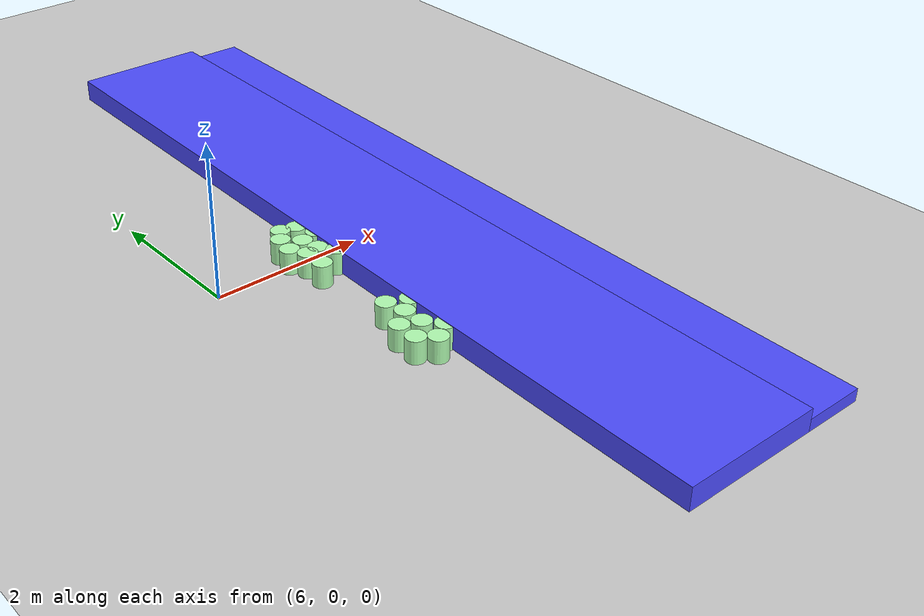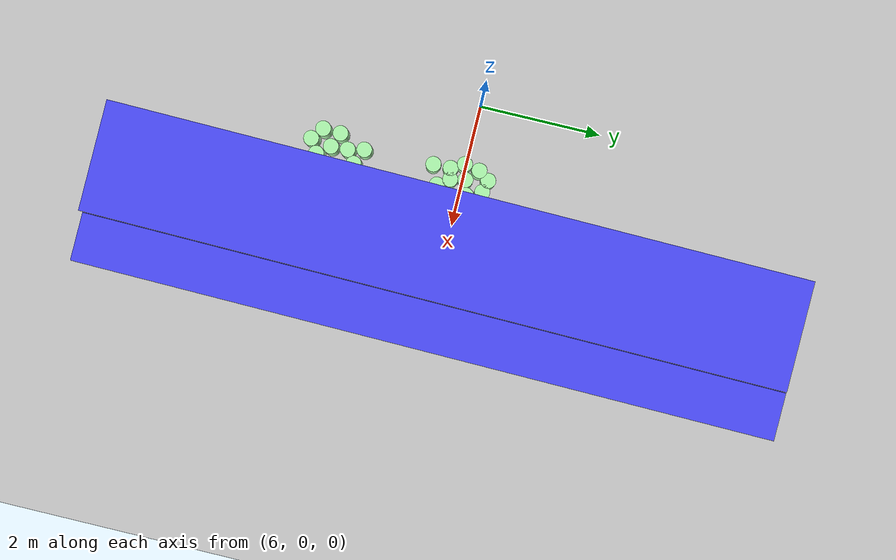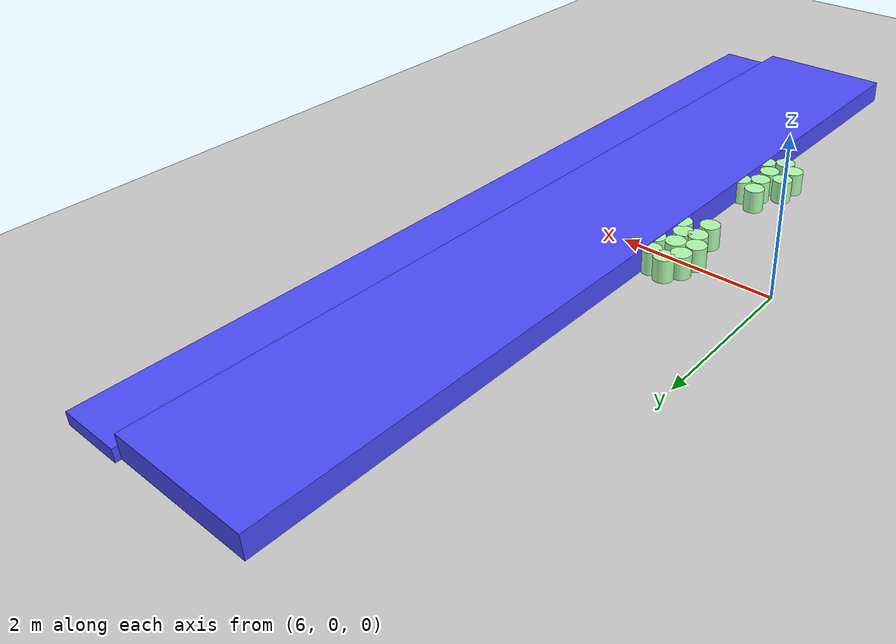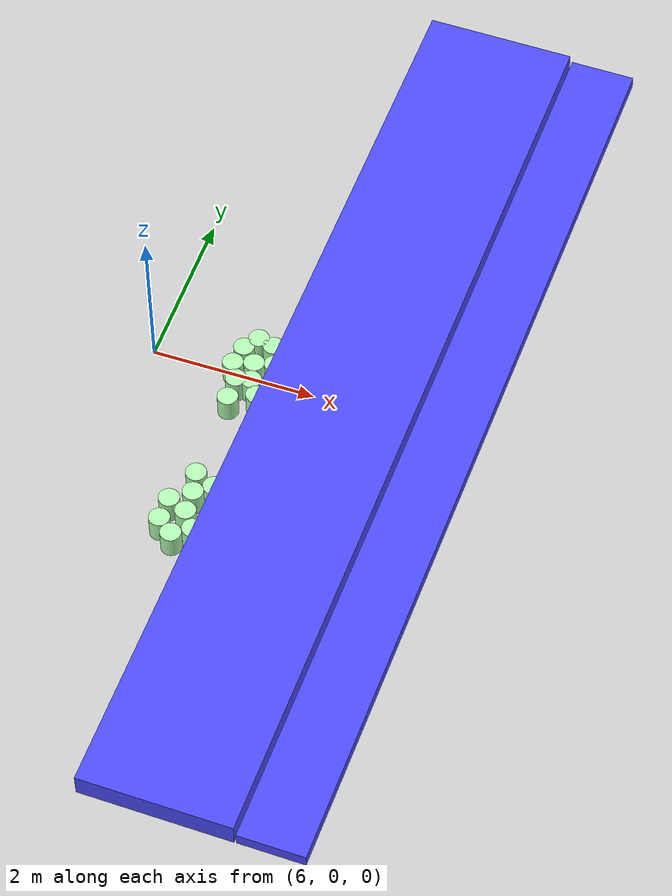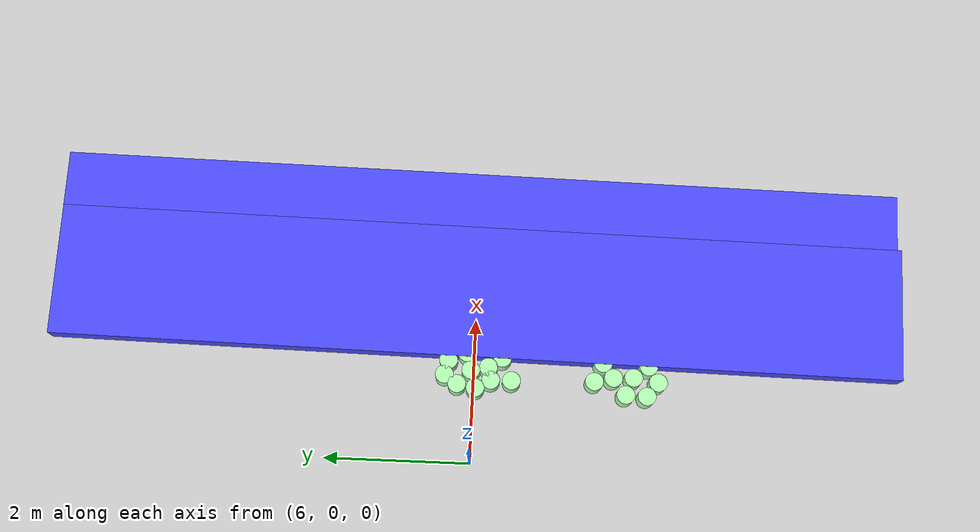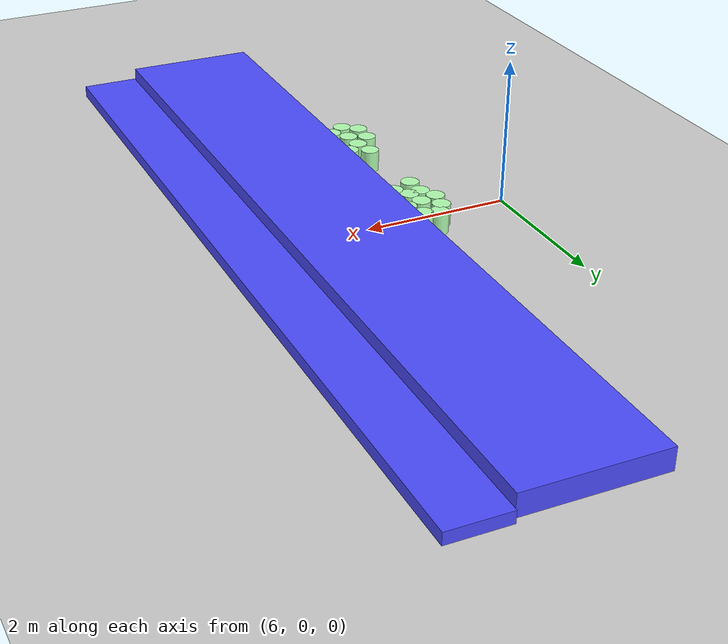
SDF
<sdf version="1.7">
 <world name="default">
  <model name="ground_plane">
   <static>1</static>
   <link name="link">
    <collision name="collision">
     <geometry><plane><normal>0 0 1</normal><size>100 100</size></plane></geometry>
     <surface><friction><ode><mu>100</mu><mu2>50</mu2></ode></friction></surface>
    </collision>
    <visual name="visual">
     <cast_shadows>0</cast_shadows>
     <geometry><plane><normal>0 0 1</normal><size>100 100</size></plane></geometry>
     <material>
      <script><uri>file://media/materials/scripts/gazebo.material</uri><name>Gazebo/Grey</name></script>
     </material>
    </visual>
   </link>
  </model>
  <model name="ban_400_80_30_clone_clone_clone">
   <link name="link">
    <inertial>
     <mass>1</mass>
     <inertia>
      <ixx>0.166667</ixx>
      <ixy>0</ixy>
      <ixz>0</ixz>
      <iyy>0.166667</iyy>
      <iyz>0</iyz>
      <izz>0.166667</izz>
     </inertia>
    </inertial>
    <visual name="visual">
     <geometry><box><size>11.703 1.83242 0.3</size></box></geometry>
     <material>
      <script><name>Gazebo/Grey</name><uri>file://media/materials/scripts/gazebo.material</uri></script>
      <shader type="pixel"><normal_map>__default__</normal_map></shader>
      <ambient>0.3 0.3 1 1</ambient>
      <diffuse>0.7 0.7 0.7 1</diffuse>
      <specular>0.01 0.01 0.01 1</specular>
      <emissive>0 0 0 1</emissive>
     </material>
    </visual>
    <collision name="collision">
     <geometry><box><size>11.703 1.83242 0.3</size></box></geometry>
     <surface>
      <friction>
       <ode><mu>1</mu><mu2>1</mu2><fdir1>0 0 0</fdir1><slip1>0</slip1><slip2>0</slip2></ode>
       <torsional>
        <coefficient>1</coefficient>
        <patch_radius>0</patch_radius>
        <surface_radius>0</surface_radius>
        <use_patch_radius>1</use_patch_radius>
        <ode><slip>0</slip></ode>
       </torsional>
      </friction>
      <bounce><restitution_coefficient>0</restitution_coefficient><threshold>1e+06</threshold></bounce>
      <contact>
       <collide_without_contact>0</collide_without_contact>
       <collide_without_contact_bitmask>1</collide_without_contact_bitmask>
       <collide_bitmask>1</collide_bitmask>
       <ode>
        <soft_cfm>0</soft_cfm>
        <soft_erp>0.2</soft_erp>
        <kp>1e+13</kp>
        <kd>1</kd>
        <max_vel>0.01</max_vel>
        <min_depth>0</min_depth>
       </ode>
       <bullet>
        <split_impulse>1</split_impulse>
        <split_impulse_penetration_threshold>-0.01</split_impulse_penetration_threshold>
        <soft_cfm>0</soft_cfm>
        <soft_erp>0.2</soft_erp>
        <kp>1e+13</kp>
        <kd>1</kd>
       </bullet>
      </contact>
     </surface>
    </collision>
   </link>
   <static>1</static>
   <pose>8.35251 0.000658 0.15556 0 -0 1.55763</pose>
  </model>
  <model name="ban_400_80_30_clone">
   <link name="link">
    <inertial>
     <mass>1</mass>
     <inertia>
      <ixx>0.166667</ixx>
      <ixy>0</ixy>
      <ixz>0</ixz>
      <iyy>0.166667</iyy>
      <iyz>0</iyz>
      <izz>0.166667</izz>
     </inertia>
    </inertial>
    <visual name="visual">
     <geometry><box><size>11.7457 0.8 0.3</size></box></geometry>
     <material>
      <script><name>Gazebo/Grey</name><uri>file://media/materials/scripts/gazebo.material</uri></script>
      <shader type="pixel"><normal_map>__default__</normal_map></shader>
      <ambient>0.3 0.3 1 1</ambient>
      <diffuse>0.7 0.7 0.7 1</diffuse>
      <specular>0.01 0.01 0.01 1</specular>
      <emissive>0 0 0 1</emissive>
     </material>
    </visual>
    <collision name="collision">
     <geometry><box><size>11.7457 0.8 0.3</size></box></geometry>
     <surface>
      <friction>
       <ode><mu>1</mu><mu2>1</mu2><fdir1>0 0 0</fdir1><slip1>0</slip1><slip2>0</slip2></ode>
       <torsional>
        <coefficient>1</coefficient>
        <patch_radius>0</patch_radius>
        <surface_radius>0</surface_radius>
        <use_patch_radius>1</use_patch_radius>
        <ode><slip>0</slip></ode>
       </torsional>
      </friction>
      <bounce><restitution_coefficient>0</restitution_coefficient><threshold>1e+06</threshold></bounce>
      <contact>
       <collide_without_contact>0</collide_without_contact>
       <collide_without_contact_bitmask>1</collide_without_contact_bitmask>
       <collide_bitmask>1</collide_bitmask>
       <ode>
        <soft_cfm>0</soft_cfm>
        <soft_erp>0.2</soft_erp>
        <kp>1e+13</kp>
        <kd>1</kd>
        <max_vel>0.01</max_vel>
        <min_depth>0</min_depth>
       </ode>
       <bullet>
        <split_impulse>1</split_impulse>
        <split_impulse_penetration_threshold>-0.01</split_impulse_penetration_threshold>
        <soft_cfm>0</soft_cfm>
        <soft_erp>0.2</soft_erp>
        <kp>1e+13</kp>
        <kd>1</kd>
       </bullet>
      </contact>
     </surface>
    </collision>
   </link>
   <static>1</static>
   <pose>9.68721 0.016567 0 0 -0 1.55763</pose>
  </model>
  <model name="mhz_y_25_30_clone_29_clone_clone_clone_1_clone_2_clone_0">
   <link name="link">
    <inertial>
     <mass>1</mass>
     <inertia><ixx>0.145833</ixx><ixy>0</ixy><ixz>0</ixz><iyy>0.145833</iyy><iyz>0</iyz><izz>0.125</izz></inertia>
    </inertial>
    <visual name="visual">
     <geometry><cylinder><radius>0.125</radius><length>0.3</length></cylinder></geometry>
     <material>
      <script><name>Gazebo/Grey</name><uri>file://media/materials/scripts/gazebo.material</uri></script>
      <shader type="pixel"><normal_map>__default__</normal_map></shader>
      <ambient>0 1 0 0</ambient>
      <diffuse>0.7 1 0.7 1</diffuse>
      <specular>0.01 0.01 0.01 1</specular>
      <emissive>0 0 0 1</emissive>
     </material>
    </visual>
    <collision name="collision">
     <geometry><cylinder><radius>0.125</radius><length>0.3</length></cylinder></geometry>
     <surface>
      <friction>
       <ode><mu>1</mu><mu2>1</mu2><fdir1>0 0 0</fdir1><slip1>0</slip1><slip2>0</slip2></ode>
       <torsional>
        <coefficient>1</coefficient>
        <patch_radius>0</patch_radius>
        <surface_radius>0</surface_radius>
        <use_patch_radius>1</use_patch_radius>
        <ode><slip>0</slip></ode>
       </torsional>
      </friction>
      <bounce><restitution_coefficient>0</restitution_coefficient><threshold>1e+06</threshold></bounce>
      <contact>
       <collide_without_contact>0</collide_without_contact>
       <collide_without_contact_bitmask>1</collide_without_contact_bitmask>
       <collide_bitmask>1</collide_bitmask>
       <ode>
        <soft_cfm>0</soft_cfm>
        <soft_erp>0.2</soft_erp>
        <kp>1e+13</kp>
        <kd>1</kd>
        <max_vel>0.01</max_vel>
        <min_depth>0</min_depth>
       </ode>
       <bullet>
        <split_impulse>1</split_impulse>
        <split_impulse_penetration_threshold>-0.01</split_impulse_penetration_threshold>
        <soft_cfm>0</soft_cfm>
        <soft_erp>0.2</soft_erp>
        <kp>1e+13</kp>
        <kd>1</kd>
       </bullet>
      </contact>
     </surface>
    </collision>
   </link>
   <static>1</static>
   <pose>7.01026 -0.026172 0.14679 0 -0 0</pose>
  </model>
  <model name="mhz_y_25_30_clone_29_clone_clone_clone_1_clone_2_clone_1">
   <link name="link">
    <inertial>
     <mass>1</mass>
     <inertia><ixx>0.145833</ixx><ixy>0</ixy><ixz>0</ixz><iyy>0.145833</iyy><iyz>0</iyz><izz>0.125</izz></inertia>
    </inertial>
    <visual name="visual">
     <geometry><cylinder><radius>0.125</radius><length>0.3</length></cylinder></geometry>
     <material>
      <script><name>Gazebo/Grey</name><uri>file://media/materials/scripts/gazebo.material</uri></script>
      <shader type="pixel"><normal_map>__default__</normal_map></shader>
      <ambient>0 1 0 0</ambient>
      <diffuse>0.7 1 0.7 1</diffuse>
      <specular>0.01 0.01 0.01 1</specular>
      <emissive>0 0 0 1</emissive>
     </material>
    </visual>
    <collision name="collision">
     <geometry><cylinder><radius>0.125</radius><length>0.3</length></cylinder></geometry>
     <surface>
      <friction>
       <ode><mu>1</mu><mu2>1</mu2><fdir1>0 0 0</fdir1><slip1>0</slip1><slip2>0</slip2></ode>
       <torsional>
        <coefficient>1</coefficient>
        <patch_radius>0</patch_radius>
        <surface_radius>0</surface_radius>
        <use_patch_radius>1</use_patch_radius>
        <ode><slip>0</slip></ode>
       </torsional>
      </friction>
      <bounce><restitution_coefficient>0</restitution_coefficient><threshold>1e+06</threshold></bounce>
      <contact>
       <collide_without_contact>0</collide_without_contact>
       <collide_without_contact_bitmask>1</collide_without_contact_bitmask>
       <collide_bitmask>1</collide_bitmask>
       <ode>
        <soft_cfm>0</soft_cfm>
        <soft_erp>0.2</soft_erp>
        <kp>1e+13</kp>
        <kd>1</kd>
        <max_vel>0.01</max_vel>
        <min_depth>0</min_depth>
       </ode>
       <bullet>
        <split_impulse>1</split_impulse>
        <split_impulse_penetration_threshold>-0.01</split_impulse_penetration_threshold>
        <soft_cfm>0</soft_cfm>
        <soft_erp>0.2</soft_erp>
        <kp>1e+13</kp>
        <kd>1</kd>
       </bullet>
      </contact>
     </surface>
    </collision>
   </link>
   <static>1</static>
   <pose>7.05705 0.224099 0.14679 0 -0 0</pose>
  </model>
  <model name="mhz_y_25_30_clone_29_clone_clone_clone_1_clone_2_clone_2">
   <link name="link">
    <inertial>
     <mass>1</mass>
     <inertia><ixx>0.145833</ixx><ixy>0</ixy><ixz>0</ixz><iyy>0.145833</iyy><iyz>0</iyz><izz>0.125</izz></inertia>
    </inertial>
    <visual name="visual">
     <geometry><cylinder><radius>0.125</radius><length>0.3</length></cylinder></geometry>
     <material>
      <script><name>Gazebo/Grey</name><uri>file://media/materials/scripts/gazebo.material</uri></script>
      <shader type="pixel"><normal_map>__default__</normal_map></shader>
      <ambient>0 1 0 0</ambient>
      <diffuse>0.7 1 0.7 1</diffuse>
      <specular>0.01 0.01 0.01 1</specular>
      <emissive>0 0 0 1</emissive>
     </material>
    </visual>
    <collision name="collision">
     <geometry><cylinder><radius>0.125</radius><length>0.3</length></cylinder></geometry>
     <surface>
      <friction>
       <ode><mu>1</mu><mu2>1</mu2><fdir1>0 0 0</fdir1><slip1>0</slip1><slip2>0</slip2></ode>
       <torsional>
        <coefficient>1</coefficient>
        <patch_radius>0</patch_radius>
        <surface_radius>0</surface_radius>
        <use_patch_radius>1</use_patch_radius>
        <ode><slip>0</slip></ode>
       </torsional>
      </friction>
      <bounce><restitution_coefficient>0</restitution_coefficient><threshold>1e+06</threshold></bounce>
      <contact>
       <collide_without_contact>0</collide_without_contact>
       <collide_without_contact_bitmask>1</collide_without_contact_bitmask>
       <collide_bitmask>1</collide_bitmask>
       <ode>
        <soft_cfm>0</soft_cfm>
        <soft_erp>0.2</soft_erp>
        <kp>1e+13</kp>
        <kd>1</kd>
        <max_vel>0.01</max_vel>
        <min_depth>0</min_depth>
       </ode>
       <bullet>
        <split_impulse>1</split_impulse>
        <split_impulse_penetration_threshold>-0.01</split_impulse_penetration_threshold>
        <soft_cfm>0</soft_cfm>
        <soft_erp>0.2</soft_erp>
        <kp>1e+13</kp>
        <kd>1</kd>
       </bullet>
      </contact>
     </surface>
    </collision>
   </link>
   <static>1</static>
   <pose>7.18017 0.399555 0.14679 0 -0 0</pose>
  </model>
  <model name="mhz_y_25_30_clone_29_clone_clone_clone_1_clone_2_clone_3">
   <link name="link">
    <inertial>
     <mass>1</mass>
     <inertia><ixx>0.145833</ixx><ixy>0</ixy><ixz>0</ixz><iyy>0.145833</iyy><iyz>0</iyz><izz>0.125</izz></inertia>
    </inertial>
    <visual name="visual">
     <geometry><cylinder><radius>0.125</radius><length>0.3</length></cylinder></geometry>
     <material>
      <script><name>Gazebo/Grey</name><uri>file://media/materials/scripts/gazebo.material</uri></script>
      <shader type="pixel"><normal_map>__default__</normal_map></shader>
      <ambient>0 1 0 0</ambient>
      <diffuse>0.7 1 0.7 1</diffuse>
      <specular>0.01 0.01 0.01 1</specular>
      <emissive>0 0 0 1</emissive>
     </material>
    </visual>
    <collision name="collision">
     <geometry><cylinder><radius>0.125</radius><length>0.3</length></cylinder></geometry>
     <surface>
      <friction>
       <ode><mu>1</mu><mu2>1</mu2><fdir1>0 0 0</fdir1><slip1>0</slip1><slip2>0</slip2></ode>
       <torsional>
        <coefficient>1</coefficient>
        <patch_radius>0</patch_radius>
        <surface_radius>0</surface_radius>
        <use_patch_radius>1</use_patch_radius>
        <ode><slip>0</slip></ode>
       </torsional>
      </friction>
      <bounce><restitution_coefficient>0</restitution_coefficient><threshold>1e+06</threshold></bounce>
      <contact>
       <collide_without_contact>0</collide_without_contact>
       <collide_without_contact_bitmask>1</collide_without_contact_bitmask>
       <collide_bitmask>1</collide_bitmask>
       <ode>
        <soft_cfm>0</soft_cfm>
        <soft_erp>0.2</soft_erp>
        <kp>1e+13</kp>
        <kd>1</kd>
        <max_vel>0.01</max_vel>
        <min_depth>0</min_depth>
       </ode>
       <bullet>
        <split_impulse>1</split_impulse>
        <split_impulse_penetration_threshold>-0.01</split_impulse_penetration_threshold>
        <soft_cfm>0</soft_cfm>
        <soft_erp>0.2</soft_erp>
        <kp>1e+13</kp>
        <kd>1</kd>
       </bullet>
      </contact>
     </surface>
    </collision>
   </link>
   <static>1</static>
   <pose>7.25199 0.040203 0.14679 0 -0 0</pose>
  </model>
  <model name="mhz_y_25_30_clone_29_clone_clone_clone_1_clone_2_clone_4">
   <link name="link">
    <inertial>
     <mass>1</mass>
     <inertia><ixx>0.145833</ixx><ixy>0</ixy><ixz>0</ixz><iyy>0.145833</iyy><iyz>0</iyz><izz>0.125</izz></inertia>
    </inertial>
    <visual name="visual">
     <geometry><cylinder><radius>0.125</radius><length>0.3</length></cylinder></geometry>
     <material>
      <script><name>Gazebo/Grey</name><uri>file://media/materials/scripts/gazebo.material</uri></script>
      <shader type="pixel"><normal_map>__default__</normal_map></shader>
      <ambient>0 1 0 0</ambient>
      <diffuse>0.7 1 0.7 1</diffuse>
      <specular>0.01 0.01 0.01 1</specular>
      <emissive>0 0 0 1</emissive>
     </material>
    </visual>
    <collision name="collision">
     <geometry><cylinder><radius>0.125</radius><length>0.3</length></cylinder></geometry>
     <surface>
      <friction>
       <ode><mu>1</mu><mu2>1</mu2><fdir1>0 0 0</fdir1><slip1>0</slip1><slip2>0</slip2></ode>
       <torsional>
        <coefficient>1</coefficient>
        <patch_radius>0</patch_radius>
        <surface_radius>0</surface_radius>
        <use_patch_radius>1</use_patch_radius>
        <ode><slip>0</slip></ode>
       </torsional>
      </friction>
      <bounce><restitution_coefficient>0</restitution_coefficient><threshold>1e+06</threshold></bounce>
      <contact>
       <collide_without_contact>0</collide_without_contact>
       <collide_without_contact_bitmask>1</collide_without_contact_bitmask>
       <collide_bitmask>1</collide_bitmask>
       <ode>
        <soft_cfm>0</soft_cfm>
        <soft_erp>0.2</soft_erp>
        <kp>1e+13</kp>
        <kd>1</kd>
        <max_vel>0.01</max_vel>
        <min_depth>0</min_depth>
       </ode>
       <bullet>
        <split_impulse>1</split_impulse>
        <split_impulse_penetration_threshold>-0.01</split_impulse_penetration_threshold>
        <soft_cfm>0</soft_cfm>
        <soft_erp>0.2</soft_erp>
        <kp>1e+13</kp>
        <kd>1</kd>
       </bullet>
      </contact>
     </surface>
    </collision>
   </link>
   <static>1</static>
   <pose>7.12435 -0.234569 0.14679 0 -0 0</pose>
  </model>
  <model name="mhz_y_25_30_clone_29_clone_clone_clone_1_clone_2_clone_5">
   <link name="link">
    <inertial>
     <mass>1</mass>
     <inertia><ixx>0.145833</ixx><ixy>0</ixy><ixz>0</ixz><iyy>0.145833</iyy><iyz>0</iyz><izz>0.125</izz></inertia>
    </inertial>
    <visual name="visual">
     <geometry><cylinder><radius>0.125</radius><length>0.3</length></cylinder></geometry>
     <material>
      <script><name>Gazebo/Grey</name><uri>file://media/materials/scripts/gazebo.material</uri></script>
      <shader type="pixel"><normal_map>__default__</normal_map></shader>
      <ambient>0 1 0 0</ambient>
      <diffuse>0.7 1 0.7 1</diffuse>
      <specular>0.01 0.01 0.01 1</specular>
      <emissive>0 0 0 1</emissive>
     </material>
    </visual>
    <collision name="collision">
     <geometry><cylinder><radius>0.125</radius><length>0.3</length></cylinder></geometry>
     <surface>
      <friction>
       <ode><mu>1</mu><mu2>1</mu2><fdir1>0 0 0</fdir1><slip1>0</slip1><slip2>0</slip2></ode>
       <torsional>
        <coefficient>1</coefficient>
        <patch_radius>0</patch_radius>
        <surface_radius>0</surface_radius>
        <use_patch_radius>1</use_patch_radius>
        <ode><slip>0</slip></ode>
       </torsional>
      </friction>
      <bounce><restitution_coefficient>0</restitution_coefficient><threshold>1e+06</threshold></bounce>
      <contact>
       <collide_without_contact>0</collide_without_contact>
       <collide_without_contact_bitmask>1</collide_without_contact_bitmask>
       <collide_bitmask>1</collide_bitmask>
       <ode>
        <soft_cfm>0</soft_cfm>
        <soft_erp>0.2</soft_erp>
        <kp>1e+13</kp>
        <kd>1</kd>
        <max_vel>0.01</max_vel>
        <min_depth>0</min_depth>
       </ode>
       <bullet>
        <split_impulse>1</split_impulse>
        <split_impulse_penetration_threshold>-0.01</split_impulse_penetration_threshold>
        <soft_cfm>0</soft_cfm>
        <soft_erp>0.2</soft_erp>
        <kp>1e+13</kp>
        <kd>1</kd>
       </bullet>
      </contact>
     </surface>
    </collision>
   </link>
   <static>1</static>
   <pose>7.3015 -0.199523 0.14679 0 -0 0</pose>
  </model>
  <model name="mhz_y_25_30_clone_29_clone_clone_clone_1_clone_2_clone_6">
   <link name="link">
    <inertial>
     <mass>1</mass>
     <inertia><ixx>0.145833</ixx><ixy>0</ixy><ixz>0</ixz><iyy>0.145833</iyy><iyz>0</iyz><izz>0.125</izz></inertia>
    </inertial>
    <visual name="visual">
     <geometry><cylinder><radius>0.125</radius><length>0.3</length></cylinder></geometry>
     <material>
      <script><name>Gazebo/Grey</name><uri>file://media/materials/scripts/gazebo.material</uri></script>
      <shader type="pixel"><normal_map>__default__</normal_map></shader>
      <ambient>0 1 0 0</ambient>
      <diffuse>0.7 1 0.7 1</diffuse>
      <specular>0.01 0.01 0.01 1</specular>
      <emissive>0 0 0 1</emissive>
     </material>
    </visual>
    <collision name="collision">
     <geometry><cylinder><radius>0.125</radius><length>0.3</length></cylinder></geometry>
     <surface>
      <friction>
       <ode><mu>1</mu><mu2>1</mu2><fdir1>0 0 0</fdir1><slip1>0</slip1><slip2>0</slip2></ode>
       <torsional>
        <coefficient>1</coefficient>
        <patch_radius>0</patch_radius>
        <surface_radius>0</surface_radius>
        <use_patch_radius>1</use_patch_radius>
        <ode><slip>0</slip></ode>
       </torsional>
      </friction>
      <bounce><restitution_coefficient>0</restitution_coefficient><threshold>1e+06</threshold></bounce>
      <contact>
       <collide_without_contact>0</collide_without_contact>
       <collide_without_contact_bitmask>1</collide_without_contact_bitmask>
       <collide_bitmask>1</collide_bitmask>
       <ode>
        <soft_cfm>0</soft_cfm>
        <soft_erp>0.2</soft_erp>
        <kp>1e+13</kp>
        <kd>1</kd>
        <max_vel>0.01</max_vel>
        <min_depth>0</min_depth>
       </ode>
       <bullet>
        <split_impulse>1</split_impulse>
        <split_impulse_penetration_threshold>-0.01</split_impulse_penetration_threshold>
        <soft_cfm>0</soft_cfm>
        <soft_erp>0.2</soft_erp>
        <kp>1e+13</kp>
        <kd>1</kd>
       </bullet>
      </contact>
     </surface>
    </collision>
   </link>
   <static>1</static>
   <pose>7.37887 0.349223 0.14679 0 -0 0</pose>
  </model>
  <model name="mhz_y_25_30_clone_29_clone_clone_clone_1_clone_2_clone_7">
   <link name="link">
    <inertial>
     <mass>1</mass>
     <inertia><ixx>0.145833</ixx><ixy>0</ixy><ixz>0</ixz><iyy>0.145833</iyy><iyz>0</iyz><izz>0.125</izz></inertia>
    </inertial>
    <visual name="visual">
     <geometry><cylinder><radius>0.125</radius><length>0.3</length></cylinder></geometry>
     <material>
      <script><name>Gazebo/Grey</name><uri>file://media/materials/scripts/gazebo.material</uri></script>
      <shader type="pixel"><normal_map>__default__</normal_map></shader>
      <ambient>0 1 0 0</ambient>
      <diffuse>0.7 1 0.7 1</diffuse>
      <specular>0.01 0.01 0.01 1</specular>
      <emissive>0 0 0 1</emissive>
     </material>
    </visual>
    <collision name="collision">
     <geometry><cylinder><radius>0.125</radius><length>0.3</length></cylinder></geometry>
     <surface>
      <friction>
       <ode><mu>1</mu><mu2>1</mu2><fdir1>0 0 0</fdir1><slip1>0</slip1><slip2>0</slip2></ode>
       <torsional>
        <coefficient>1</coefficient>
        <patch_radius>0</patch_radius>
        <surface_radius>0</surface_radius>
        <use_patch_radius>1</use_patch_radius>
        <ode><slip>0</slip></ode>
       </torsional>
      </friction>
      <bounce><restitution_coefficient>0</restitution_coefficient><threshold>1e+06</threshold></bounce>
      <contact>
       <collide_without_contact>0</collide_without_contact>
       <collide_without_contact_bitmask>1</collide_without_contact_bitmask>
       <collide_bitmask>1</collide_bitmask>
       <ode>
        <soft_cfm>0</soft_cfm>
        <soft_erp>0.2</soft_erp>
        <kp>1e+13</kp>
        <kd>1</kd>
        <max_vel>0.01</max_vel>
        <min_depth>0</min_depth>
       </ode>
       <bullet>
        <split_impulse>1</split_impulse>
        <split_impulse_penetration_threshold>-0.01</split_impulse_penetration_threshold>
        <soft_cfm>0</soft_cfm>
        <soft_erp>0.2</soft_erp>
        <kp>1e+13</kp>
        <kd>1</kd>
       </bullet>
      </contact>
     </surface>
    </collision>
   </link>
   <static>1</static>
   <pose>7.48841 0.102347 0.14679 0 -0 0</pose>
  </model>
  <model name="mhz_y_25_30_clone_29_clone_clone_clone_1_clone_2_clone_9">
   <link name="link">
    <inertial>
     <mass>1</mass>
     <inertia><ixx>0.145833</ixx><ixy>0</ixy><ixz>0</ixz><iyy>0.145833</iyy><iyz>0</iyz><izz>0.125</izz></inertia>
    </inertial>
    <visual name="visual">
     <geometry><cylinder><radius>0.125</radius><length>0.3</length></cylinder></geometry>
     <material>
      <script><name>Gazebo/Grey</name><uri>file://media/materials/scripts/gazebo.material</uri></script>
      <shader type="pixel"><normal_map>__default__</normal_map></shader>
      <ambient>0 1 0 0</ambient>
      <diffuse>0.7 1 0.7 1</diffuse>
      <specular>0.01 0.01 0.01 1</specular>
      <emissive>0 0 0 1</emissive>
     </material>
    </visual>
    <collision name="collision">
     <geometry><cylinder><radius>0.125</radius><length>0.3</length></cylinder></geometry>
     <surface>
      <friction>
       <ode><mu>1</mu><mu2>1</mu2><fdir1>0 0 0</fdir1><slip1>0</slip1><slip2>0</slip2></ode>
       <torsional>
        <coefficient>1</coefficient>
        <patch_radius>0</patch_radius>
        <surface_radius>0</surface_radius>
        <use_patch_radius>1</use_patch_radius>
        <ode><slip>0</slip></ode>
       </torsional>
      </friction>
      <bounce><restitution_coefficient>0</restitution_coefficient><threshold>1e+06</threshold></bounce>
      <contact>
       <collide_without_contact>0</collide_without_contact>
       <collide_without_contact_bitmask>1</collide_without_contact_bitmask>
       <collide_bitmask>1</collide_bitmask>
       <ode>
        <soft_cfm>0</soft_cfm>
        <soft_erp>0.2</soft_erp>
        <kp>1e+13</kp>
        <kd>1</kd>
        <max_vel>0.01</max_vel>
        <min_depth>0</min_depth>
       </ode>
       <bullet>
        <split_impulse>1</split_impulse>
        <split_impulse_penetration_threshold>-0.01</split_impulse_penetration_threshold>
        <soft_cfm>0</soft_cfm>
        <soft_erp>0.2</soft_erp>
        <kp>1e+13</kp>
        <kd>1</kd>
       </bullet>
      </contact>
     </surface>
    </collision>
   </link>
   <static>1</static>
   <pose>7.12873 -0.517321 0.14679 0 -0 0</pose>
  </model>
  <model name="mhz_y_25_30_clone_29_clone_clone_clone_1_clone_2_clone_10">
   <link name="link">
    <inertial>
     <mass>1</mass>
     <inertia><ixx>0.145833</ixx><ixy>0</ixy><ixz>0</ixz><iyy>0.145833</iyy><iyz>0</iyz><izz>0.125</izz></inertia>
    </inertial>
    <visual name="visual">
     <geometry><cylinder><radius>0.125</radius><length>0.3</length></cylinder></geometry>
     <material>
      <script><name>Gazebo/Grey</name><uri>file://media/materials/scripts/gazebo.material</uri></script>
      <shader type="pixel"><normal_map>__default__</normal_map></shader>
      <ambient>0 1 0 0</ambient>
      <diffuse>0.7 1 0.7 1</diffuse>
      <specular>0.01 0.01 0.01 1</specular>
      <emissive>0 0 0 1</emissive>
     </material>
    </visual>
    <collision name="collision">
     <geometry><cylinder><radius>0.125</radius><length>0.3</length></cylinder></geometry>
     <surface>
      <friction>
       <ode><mu>1</mu><mu2>1</mu2><fdir1>0 0 0</fdir1><slip1>0</slip1><slip2>0</slip2></ode>
       <torsional>
        <coefficient>1</coefficient>
        <patch_radius>0</patch_radius>
        <surface_radius>0</surface_radius>
        <use_patch_radius>1</use_patch_radius>
        <ode><slip>0</slip></ode>
       </torsional>
      </friction>
      <bounce><restitution_coefficient>0</restitution_coefficient><threshold>1e+06</threshold></bounce>
      <contact>
       <collide_without_contact>0</collide_without_contact>
       <collide_without_contact_bitmask>1</collide_without_contact_bitmask>
       <collide_bitmask>1</collide_bitmask>
       <ode>
        <soft_cfm>0</soft_cfm>
        <soft_erp>0.2</soft_erp>
        <kp>1e+13</kp>
        <kd>1</kd>
        <max_vel>0.01</max_vel>
        <min_depth>0</min_depth>
       </ode>
       <bullet>
        <split_impulse>1</split_impulse>
        <split_impulse_penetration_threshold>-0.01</split_impulse_penetration_threshold>
        <soft_cfm>0</soft_cfm>
        <soft_erp>0.2</soft_erp>
        <kp>1e+13</kp>
        <kd>1</kd>
       </bullet>
      </contact>
     </surface>
    </collision>
   </link>
   <static>1</static>
   <pose>7.4341 -0.38565 0.14679 0 -0 0</pose>
  </model>
  <model name="mhz_y_25_30_clone_29_clone_clone_clone_1_clone_2_clone_8_clone_clone_clone_0_clone_1_clone_clone_0_clone_0_clone_clone_1_clone_clone_clone_clone_clone">
   <link name="link">
    <inertial>
     <mass>1</mass>
     <inertia><ixx>0.145833</ixx><ixy>0</ixy><ixz>0</ixz><iyy>0.145833</iyy><iyz>0</iyz><izz>0.125</izz></inertia>
    </inertial>
    <visual name="visual">
     <geometry><cylinder><radius>0.125</radius><length>0.3</length></cylinder></geometry>
     <material>
      <script><name>Gazebo/Grey</name><uri>file://media/materials/scripts/gazebo.material</uri></script>
      <shader type="pixel"><normal_map>__default__</normal_map></shader>
      <ambient>0 1 0 0</ambient>
      <diffuse>0.7 1 0.7 1</diffuse>
      <specular>0.01 0.01 0.01 1</specular>
      <emissive>0 0 0 1</emissive>
     </material>
    </visual>
    <collision name="collision">
     <geometry><cylinder><radius>0.125</radius><length>0.3</length></cylinder></geometry>
     <surface>
      <friction>
       <ode><mu>1</mu><mu2>1</mu2><fdir1>0 0 0</fdir1><slip1>0</slip1><slip2>0</slip2></ode>
       <torsional>
        <coefficient>1</coefficient>
        <patch_radius>0</patch_radius>
        <surface_radius>0</surface_radius>
        <use_patch_radius>1</use_patch_radius>
        <ode><slip>0</slip></ode>
       </torsional>
      </friction>
      <bounce><restitution_coefficient>0</restitution_coefficient><threshold>1e+06</threshold></bounce>
      <contact>
       <collide_without_contact>0</collide_without_contact>
       <collide_without_contact_bitmask>1</collide_without_contact_bitmask>
       <collide_bitmask>1</collide_bitmask>
       <ode>
        <soft_cfm>0</soft_cfm>
        <soft_erp>0.2</soft_erp>
        <kp>1e+13</kp>
        <kd>1</kd>
        <max_vel>0.01</max_vel>
        <min_depth>0</min_depth>
       </ode>
       <bullet>
        <split_impulse>1</split_impulse>
        <split_impulse_penetration_threshold>-0.01</split_impulse_penetration_threshold>
        <soft_cfm>0</soft_cfm>
        <soft_erp>0.2</soft_erp>
        <kp>1e+13</kp>
        <kd>1</kd>
       </bullet>
      </contact>
     </surface>
    </collision>
   </link>
   <static>1</static>
   <pose>7.00052 -2.0781 0.14679 0 -0 0</pose>
  </model>
  <model name="mhz_y_25_30_clone_29_clone_clone_clone_1_clone_2_clone_8_clone_clone_clone_0_clone_1_clone_clone_0_clone_0_clone_clone_1_clone_clone_clone_clone_clone_clone">
   <link name="link">
    <inertial>
     <mass>1</mass>
     <inertia><ixx>0.145833</ixx><ixy>0</ixy><ixz>0</ixz><iyy>0.145833</iyy><iyz>0</iyz><izz>0.125</izz></inertia>
    </inertial>
    <visual name="visual">
     <geometry><cylinder><radius>0.125</radius><length>0.3</length></cylinder></geometry>
     <material>
      <script><name>Gazebo/Grey</name><uri>file://media/materials/scripts/gazebo.material</uri></script>
      <shader type="pixel"><normal_map>__default__</normal_map></shader>
      <ambient>0 1 0 0</ambient>
      <diffuse>0.7 1 0.7 1</diffuse>
      <specular>0.01 0.01 0.01 1</specular>
      <emissive>0 0 0 1</emissive>
     </material>
    </visual>
    <collision name="collision">
     <geometry><cylinder><radius>0.125</radius><length>0.3</length></cylinder></geometry>
     <surface>
      <friction>
       <ode><mu>1</mu><mu2>1</mu2><fdir1>0 0 0</fdir1><slip1>0</slip1><slip2>0</slip2></ode>
       <torsional>
        <coefficient>1</coefficient>
        <patch_radius>0</patch_radius>
        <surface_radius>0</surface_radius>
        <use_patch_radius>1</use_patch_radius>
        <ode><slip>0</slip></ode>
       </torsional>
      </friction>
      <bounce><restitution_coefficient>0</restitution_coefficient><threshold>1e+06</threshold></bounce>
      <contact>
       <collide_without_contact>0</collide_without_contact>
       <collide_without_contact_bitmask>1</collide_without_contact_bitmask>
       <collide_bitmask>1</collide_bitmask>
       <ode>
        <soft_cfm>0</soft_cfm>
        <soft_erp>0.2</soft_erp>
        <kp>1e+13</kp>
        <kd>1</kd>
        <max_vel>0.01</max_vel>
        <min_depth>0</min_depth>
       </ode>
       <bullet>
        <split_impulse>1</split_impulse>
        <split_impulse_penetration_threshold>-0.01</split_impulse_penetration_threshold>
        <soft_cfm>0</soft_cfm>
        <soft_erp>0.2</soft_erp>
        <kp>1e+13</kp>
        <kd>1</kd>
       </bullet>
      </contact>
     </surface>
    </collision>
   </link>
   <static>1</static>
   <pose>6.99158 -2.36553 0.14679 0 -0 0</pose>
  </model>
  <model name="mhz_y_25_30_clone_29_clone_clone_clone_1_clone_2_clone_8_clone_clone_clone_0_clone_1_clone_clone_0_clone_0_clone_clone_1_clone_clone_clone_clone_clone_0">
   <link name="link">
    <inertial>
     <mass>1</mass>
     <inertia><ixx>0.145833</ixx><ixy>0</ixy><ixz>0</ixz><iyy>0.145833</iyy><iyz>0</iyz><izz>0.125</izz></inertia>
    </inertial>
    <visual name="visual">
     <geometry><cylinder><radius>0.125</radius><length>0.3</length></cylinder></geometry>
     <material>
      <script><name>Gazebo/Grey</name><uri>file://media/materials/scripts/gazebo.material</uri></script>
      <shader type="pixel"><normal_map>__default__</normal_map></shader>
      <ambient>0 1 0 0</ambient>
      <diffuse>0.7 1 0.7 1</diffuse>
      <specular>0.01 0.01 0.01 1</specular>
      <emissive>0 0 0 1</emissive>
     </material>
    </visual>
    <collision name="collision">
     <geometry><cylinder><radius>0.125</radius><length>0.3</length></cylinder></geometry>
     <surface>
      <friction>
       <ode><mu>1</mu><mu2>1</mu2><fdir1>0 0 0</fdir1><slip1>0</slip1><slip2>0</slip2></ode>
       <torsional>
        <coefficient>1</coefficient>
        <patch_radius>0</patch_radius>
        <surface_radius>0</surface_radius>
        <use_patch_radius>1</use_patch_radius>
        <ode><slip>0</slip></ode>
       </torsional>
      </friction>
      <bounce><restitution_coefficient>0</restitution_coefficient><threshold>1e+06</threshold></bounce>
      <contact>
       <collide_without_contact>0</collide_without_contact>
       <collide_without_contact_bitmask>1</collide_without_contact_bitmask>
       <collide_bitmask>1</collide_bitmask>
       <ode>
        <soft_cfm>0</soft_cfm>
        <soft_erp>0.2</soft_erp>
        <kp>1e+13</kp>
        <kd>1</kd>
        <max_vel>0.01</max_vel>
        <min_depth>0</min_depth>
       </ode>
       <bullet>
        <split_impulse>1</split_impulse>
        <split_impulse_penetration_threshold>-0.01</split_impulse_penetration_threshold>
        <soft_cfm>0</soft_cfm>
        <soft_erp>0.2</soft_erp>
        <kp>1e+13</kp>
        <kd>1</kd>
       </bullet>
      </contact>
     </surface>
    </collision>
   </link>
   <static>1</static>
   <pose>7.16553 -1.64603 0.14679 0 -0 0</pose>
  </model>
  <model name="mhz_y_25_30_clone_29_clone_clone_clone_1_clone_2_clone_8_clone_clone_clone_0_clone_1_clone_clone_0_clone_0_clone_clone_1_clone_clone_clone_clone_clone_0_clone">
   <link name="link">
    <inertial>
     <mass>1</mass>
     <inertia><ixx>0.145833</ixx><ixy>0</ixy><ixz>0</ixz><iyy>0.145833</iyy><iyz>0</iyz><izz>0.125</izz></inertia>
    </inertial>
    <visual name="visual">
     <geometry><cylinder><radius>0.125</radius><length>0.3</length></cylinder></geometry>
     <material>
      <script><name>Gazebo/Grey</name><uri>file://media/materials/scripts/gazebo.material</uri></script>
      <shader type="pixel"><normal_map>__default__</normal_map></shader>
      <ambient>0 1 0 0</ambient>
      <diffuse>0.7 1 0.7 1</diffuse>
      <specular>0.01 0.01 0.01 1</specular>
      <emissive>0 0 0 1</emissive>
     </material>
    </visual>
    <collision name="collision">
     <geometry><cylinder><radius>0.125</radius><length>0.3</length></cylinder></geometry>
     <surface>
      <friction>
       <ode><mu>1</mu><mu2>1</mu2><fdir1>0 0 0</fdir1><slip1>0</slip1><slip2>0</slip2></ode>
       <torsional>
        <coefficient>1</coefficient>
        <patch_radius>0</patch_radius>
        <surface_radius>0</surface_radius>
        <use_patch_radius>1</use_patch_radius>
        <ode><slip>0</slip></ode>
       </torsional>
      </friction>
      <bounce><restitution_coefficient>0</restitution_coefficient><threshold>1e+06</threshold></bounce>
      <contact>
       <collide_without_contact>0</collide_without_contact>
       <collide_without_contact_bitmask>1</collide_without_contact_bitmask>
       <collide_bitmask>1</collide_bitmask>
       <ode>
        <soft_cfm>0</soft_cfm>
        <soft_erp>0.2</soft_erp>
        <kp>1e+13</kp>
        <kd>1</kd>
        <max_vel>0.01</max_vel>
        <min_depth>0</min_depth>
       </ode>
       <bullet>
        <split_impulse>1</split_impulse>
        <split_impulse_penetration_threshold>-0.01</split_impulse_penetration_threshold>
        <soft_cfm>0</soft_cfm>
        <soft_erp>0.2</soft_erp>
        <kp>1e+13</kp>
        <kd>1</kd>
       </bullet>
      </contact>
     </surface>
    </collision>
   </link>
   <static>1</static>
   <pose>7.22485 -1.90632 0.14679 0 -0 0</pose>
  </model>
  <model name="mhz_y_25_30_clone_29_clone_clone_clone_1_clone_2_clone_8_clone_clone_clone_0_clone_1_clone_clone_0_clone_0_clone_clone_1_clone_clone_clone_clone_clone_0_clone_0">
   <link name="link">
    <inertial>
     <mass>1</mass>
     <inertia><ixx>0.145833</ixx><ixy>0</ixy><ixz>0</ixz><iyy>0.145833</iyy><iyz>0</iyz><izz>0.125</izz></inertia>
    </inertial>
    <visual name="visual">
     <geometry><cylinder><radius>0.125</radius><length>0.3</length></cylinder></geometry>
     <material>
      <script><name>Gazebo/Grey</name><uri>file://media/materials/scripts/gazebo.material</uri></script>
      <shader type="pixel"><normal_map>__default__</normal_map></shader>
      <ambient>0 1 0 0</ambient>
      <diffuse>0.7 1 0.7 1</diffuse>
      <specular>0.01 0.01 0.01 1</specular>
      <emissive>0 0 0 1</emissive>
     </material>
    </visual>
    <collision name="collision">
     <geometry><cylinder><radius>0.125</radius><length>0.3</length></cylinder></geometry>
     <surface>
      <friction>
       <ode><mu>1</mu><mu2>1</mu2><fdir1>0 0 0</fdir1><slip1>0</slip1><slip2>0</slip2></ode>
       <torsional>
        <coefficient>1</coefficient>
        <patch_radius>0</patch_radius>
        <surface_radius>0</surface_radius>
        <use_patch_radius>1</use_patch_radius>
        <ode><slip>0</slip></ode>
       </torsional>
      </friction>
      <bounce><restitution_coefficient>0</restitution_coefficient><threshold>1e+06</threshold></bounce>
      <contact>
       <collide_without_contact>0</collide_without_contact>
       <collide_without_contact_bitmask>1</collide_without_contact_bitmask>
       <collide_bitmask>1</collide_bitmask>
       <ode>
        <soft_cfm>0</soft_cfm>
        <soft_erp>0.2</soft_erp>
        <kp>1e+13</kp>
        <kd>1</kd>
        <max_vel>0.01</max_vel>
        <min_depth>0</min_depth>
       </ode>
       <bullet>
        <split_impulse>1</split_impulse>
        <split_impulse_penetration_threshold>-0.01</split_impulse_penetration_threshold>
        <soft_cfm>0</soft_cfm>
        <soft_erp>0.2</soft_erp>
        <kp>1e+13</kp>
        <kd>1</kd>
       </bullet>
      </contact>
     </surface>
    </collision>
   </link>
   <static>1</static>
   <pose>7.23884 -2.17941 0.14679 0 -0 0</pose>
  </model>
  <model name="mhz_y_25_30_clone_29_clone_clone_clone_1_clone_2_clone_8_clone_clone_clone_0_clone_1_clone_clone_0_clone_0_clone_clone_1_clone_clone_clone_clone_clone_0_clone_0_clone">
   <link name="link">
    <inertial>
     <mass>1</mass>
     <inertia><ixx>0.145833</ixx><ixy>0</ixy><ixz>0</ixz><iyy>0.145833</iyy><iyz>0</iyz><izz>0.125</izz></inertia>
    </inertial>
    <visual name="visual">
     <geometry><cylinder><radius>0.125</radius><length>0.3</length></cylinder></geometry>
     <material>
      <script><name>Gazebo/Grey</name><uri>file://media/materials/scripts/gazebo.material</uri></script>
      <shader type="pixel"><normal_map>__default__</normal_map></shader>
      <ambient>0 1 0 0</ambient>
      <diffuse>0.7 1 0.7 1</diffuse>
      <specular>0.01 0.01 0.01 1</specular>
      <emissive>0 0 0 1</emissive>
     </material>
    </visual>
    <collision name="collision">
     <geometry><cylinder><radius>0.125</radius><length>0.3</length></cylinder></geometry>
     <surface>
      <friction>
       <ode><mu>1</mu><mu2>1</mu2><fdir1>0 0 0</fdir1><slip1>0</slip1><slip2>0</slip2></ode>
       <torsional>
        <coefficient>1</coefficient>
        <patch_radius>0</patch_radius>
        <surface_radius>0</surface_radius>
        <use_patch_radius>1</use_patch_radius>
        <ode><slip>0</slip></ode>
       </torsional>
      </friction>
      <bounce><restitution_coefficient>0</restitution_coefficient><threshold>1e+06</threshold></bounce>
      <contact>
       <collide_without_contact>0</collide_without_contact>
       <collide_without_contact_bitmask>1</collide_without_contact_bitmask>
       <collide_bitmask>1</collide_bitmask>
       <ode>
        <soft_cfm>0</soft_cfm>
        <soft_erp>0.2</soft_erp>
        <kp>1e+13</kp>
        <kd>1</kd>
        <max_vel>0.01</max_vel>
        <min_depth>0</min_depth>
       </ode>
       <bullet>
        <split_impulse>1</split_impulse>
        <split_impulse_penetration_threshold>-0.01</split_impulse_penetration_threshold>
        <soft_cfm>0</soft_cfm>
        <soft_erp>0.2</soft_erp>
        <kp>1e+13</kp>
        <kd>1</kd>
       </bullet>
      </contact>
     </surface>
    </collision>
   </link>
   <static>1</static>
   <pose>7.40084 -2.3833 0.14679 0 -0 0</pose>
  </model>
  <model name="mhz_y_25_30_clone_29_clone_clone_clone_1_clone_2_clone_8_clone_clone_clone_0_clone_1_clone_clone_0_clone_0_clone_clone_1_clone_clone_clone_clone_clone_0_clone_0_clone_0">
   <link name="link">
    <inertial>
     <mass>1</mass>
     <inertia><ixx>0.145833</ixx><ixy>0</ixy><ixz>0</ixz><iyy>0.145833</iyy><iyz>0</iyz><izz>0.125</izz></inertia>
    </inertial>
    <visual name="visual">
     <geometry><cylinder><radius>0.125</radius><length>0.3</length></cylinder></geometry>
     <material>
      <script><name>Gazebo/Grey</name><uri>file://media/materials/scripts/gazebo.material</uri></script>
      <shader type="pixel"><normal_map>__default__</normal_map></shader>
      <ambient>0 1 0 0</ambient>
      <diffuse>0.7 1 0.7 1</diffuse>
      <specular>0.01 0.01 0.01 1</specular>
      <emissive>0 0 0 1</emissive>
     </material>
    </visual>
    <collision name="collision">
     <geometry><cylinder><radius>0.125</radius><length>0.3</length></cylinder></geometry>
     <surface>
      <friction>
       <ode><mu>1</mu><mu2>1</mu2><fdir1>0 0 0</fdir1><slip1>0</slip1><slip2>0</slip2></ode>
       <torsional>
        <coefficient>1</coefficient>
        <patch_radius>0</patch_radius>
        <surface_radius>0</surface_radius>
        <use_patch_radius>1</use_patch_radius>
        <ode><slip>0</slip></ode>
       </torsional>
      </friction>
      <bounce><restitution_coefficient>0</restitution_coefficient><threshold>1e+06</threshold></bounce>
      <contact>
       <collide_without_contact>0</collide_without_contact>
       <collide_without_contact_bitmask>1</collide_without_contact_bitmask>
       <collide_bitmask>1</collide_bitmask>
       <ode>
        <soft_cfm>0</soft_cfm>
        <soft_erp>0.2</soft_erp>
        <kp>1e+13</kp>
        <kd>1</kd>
        <max_vel>0.01</max_vel>
        <min_depth>0</min_depth>
       </ode>
       <bullet>
        <split_impulse>1</split_impulse>
        <split_impulse_penetration_threshold>-0.01</split_impulse_penetration_threshold>
        <soft_cfm>0</soft_cfm>
        <soft_erp>0.2</soft_erp>
        <kp>1e+13</kp>
        <kd>1</kd>
       </bullet>
      </contact>
     </surface>
    </collision>
   </link>
   <static>1</static>
   <pose>7.42061 -1.76139 0.14679 0 -0 0</pose>
  </model>
  <model name="mhz_y_25_30_clone_29_clone_clone_clone_1_clone_2_clone_8_clone_clone_clone_0_clone_1_clone_clone_clone_0_clone_2_clone_0">
   <link name="link">
    <inertial>
     <mass>1</mass>
     <inertia><ixx>0.145833</ixx><ixy>0</ixy><ixz>0</ixz><iyy>0.145833</iyy><iyz>0</iyz><izz>0.125</izz></inertia>
    </inertial>
    <visual name="visual">
     <geometry><cylinder><radius>0.125</radius><length>0.3</length></cylinder></geometry>
     <material>
      <script><name>Gazebo/Grey</name><uri>file://media/materials/scripts/gazebo.material</uri></script>
      <shader type="pixel"><normal_map>__default__</normal_map></shader>
      <ambient>0 1 0 0</ambient>
      <diffuse>0.7 1 0.7 1</diffuse>
      <specular>0.01 0.01 0.01 1</specular>
      <emissive>0 0 0 1</emissive>
     </material>
    </visual>
    <collision name="collision">
     <geometry><cylinder><radius>0.125</radius><length>0.3</length></cylinder></geometry>
     <surface>
      <friction>
       <ode><mu>1</mu><mu2>1</mu2><fdir1>0 0 0</fdir1><slip1>0</slip1><slip2>0</slip2></ode>
       <torsional>
        <coefficient>1</coefficient>
        <patch_radius>0</patch_radius>
        <surface_radius>0</surface_radius>
        <use_patch_radius>1</use_patch_radius>
        <ode><slip>0</slip></ode>
       </torsional>
      </friction>
      <bounce><restitution_coefficient>0</restitution_coefficient><threshold>1e+06</threshold></bounce>
      <contact>
       <collide_without_contact>0</collide_without_contact>
       <collide_without_contact_bitmask>1</collide_without_contact_bitmask>
       <collide_bitmask>1</collide_bitmask>
       <ode>
        <soft_cfm>0</soft_cfm>
        <soft_erp>0.2</soft_erp>
        <kp>1e+13</kp>
        <kd>1</kd>
        <max_vel>0.01</max_vel>
        <min_depth>0</min_depth>
       </ode>
       <bullet>
        <split_impulse>1</split_impulse>
        <split_impulse_penetration_threshold>-0.01</split_impulse_penetration_threshold>
        <soft_cfm>0</soft_cfm>
        <soft_erp>0.2</soft_erp>
        <kp>1e+13</kp>
        <kd>1</kd>
       </bullet>
      </contact>
     </surface>
    </collision>
   </link>
   <static>1</static>
   <pose>7.18652 -2.51598 0.14679 0 -0 0</pose>
  </model>
 </world>
</sdf>
